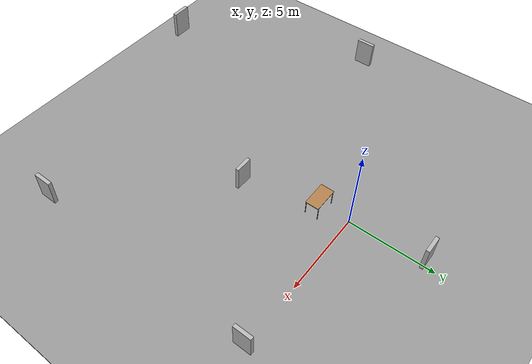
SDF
<sdf version="1.6">
 <world name="default">
  <light name="sun" type="directional">
   <pose>0 0 10 -0.1 -0.5 0</pose>
   <diffuse>0.8 0.8 0.8 1</diffuse>
   <specular>0.2 0.2 0.2 1</specular>
   <attenuation>
    <range>1000</range>
    <constant>0.9</constant>
    <linear>0.01</linear>
    <quadratic>0.001</quadratic>
   </attenuation>
   <direction>-0.5 0.1 -0.9</direction>
  </light>
  <plugin name="ros_interface_plugin" filename="librotors_gazebo_ros_interface_plugin.so"/>
  <spherical_coordinates>
   <surface_model>EARTH_WGS84</surface_model>
   <latitude_deg>47.3667</latitude_deg>
   <longitude_deg>8.55</longitude_deg>
   <elevation>500</elevation>
   <heading_deg>0</heading_deg>
  </spherical_coordinates>
  <physics name="default_physics" default="0" type="ode">
   <ode>
    <solver>
     <type>quick</type>
     <iters>1000</iters>
     <sor>1.3</sor>
     <use_dynamic_moi_rescaling>0</use_dynamic_moi_rescaling>
    </solver>
    <constraints>
     <cfm>0</cfm>
     <erp>0.2</erp>
     <contact_max_correcting_vel>100</contact_max_correcting_vel>
     <contact_surface_layer>0.001</contact_surface_layer>
    </constraints>
   </ode>
   <max_step_size>0.005</max_step_size>
   <real_time_factor>1</real_time_factor>
   <real_time_update_rate>200</real_time_update_rate>
  </physics>
  <scene><ambient>0.4 0.4 0.4 1</ambient><background>0.7 0.7 0.7 1</background><shadows>1</shadows></scene>
  <model name="gallery_plane_0">
   <static>1</static>
   <link name="link">
    <collision name="collision"><geometry><box><size>100 100 0.1</size></box></geometry></collision>
    <visual name="visual">
     <cast_shadows>0</cast_shadows>
     <geometry><box><size>100 100 0.1</size></box></geometry>
     <material>
      <script><uri>file://media/materials/scripts/gazebo.material</uri><name>Gazebo/Grey</name></script>
     </material>
    </visual>
   </link>
  </model>
  <model name="painting_wall_6">
   <static>1</static>
   <link name="link">
    <pose>0 0 1.4 0 -0 0</pose>
    <collision name="collision"><geometry><box><size>1 0.2 1.5</size></box></geometry></collision>
    <visual name="visual">
     <cast_shadows>0</cast_shadows>
     <geometry><box><size>1 0.2 1.5</size></box></geometry>
     <material>
      <script>
       <uri>model://painting_wall/materials/scripts</uri>
       <uri>model://painting_wall/materials/textures</uri>
       <name>vrc/painting_wall8</name>
      </script>
     </material>
    </visual>
   </link>
   <pose>1.81259 -5.68511 0.044938 0 -0 0</pose>
  </model>
  <model name="painting_wall_7">
   <static>1</static>
   <link name="link">
    <pose>0 0 1.4 0 -0 0</pose>
    <collision name="collision"><geometry><box><size>1 0.2 1.5</size></box></geometry></collision>
    <visual name="visual">
     <cast_shadows>0</cast_shadows>
     <geometry><box><size>1 0.2 1.5</size></box></geometry>
     <material>
      <script>
       <uri>model://painting_wall/materials/scripts</uri>
       <uri>model://painting_wall/materials/textures</uri>
       <name>vrc/painting_wall10</name>
      </script>
     </material>
    </visual>
   </link>
   <pose>-2.99853 -14.156 3.2277 0 -0 0</pose>
  </model>
  <model name="painting_wall_8">
   <static>1</static>
   <link name="link">
    <pose>0 0 1.4 0 -0 0</pose>
    <collision name="collision"><geometry><box><size>1 0.2 1.5</size></box></geometry></collision>
    <visual name="visual">
     <cast_shadows>0</cast_shadows>
     <geometry><box><size>1 0.2 1.5</size></box></geometry>
     <material>
      <script>
       <uri>model://painting_wall/materials/scripts</uri>
       <uri>model://painting_wall/materials/textures</uri>
       <name>vrc/painting_wall1</name>
      </script>
     </material>
    </visual>
   </link>
   <pose>-9.29303 -5.09864 1.45276 0 -0 1.57</pose>
  </model>
  <model name="painting_wall_8_clone_0">
   <static>1</static>
   <link name="link">
    <pose>0 0 1.4 0 -0 0</pose>
    <collision name="collision"><geometry><box><size>1 0.2 1.5</size></box></geometry></collision>
    <visual name="visual">
     <cast_shadows>0</cast_shadows>
     <geometry><box><size>1 0.2 1.5</size></box></geometry>
     <material>
      <script>
       <uri>model://painting_wall/materials/scripts</uri>
       <uri>model://painting_wall/materials/textures</uri>
       <name>vrc/painting_wall3</name>
      </script>
     </material>
    </visual>
   </link>
   <pose>9.09036 0.112006 0.128976 0 -0 1.57</pose>
  </model>
  <model name="painting_wall_8_clone_1">
   <static>1</static>
   <link name="link">
    <pose>0 0 1.4 0 -0 0</pose>
    <collision name="collision"><geometry><box><size>1 0.2 1.5</size></box></geometry></collision>
    <visual name="visual">
     <cast_shadows>0</cast_shadows>
     <geometry><box><size>1 0.2 1.5</size></box></geometry>
     <material>
      <script>
       <uri>model://painting_wall/materials/scripts</uri>
       <uri>model://painting_wall/materials/textures</uri>
       <name>vrc/painting_wall5</name>
      </script>
     </material>
    </visual>
   </link>
   <pose>9.35135 -12.1695 1.1297 0 -0 1.57</pose>
  </model>
  <model name="table">
   <static>1</static>
   <link name="link">
    <collision name="surface">
     <pose>0 0 1 0 -0 0</pose>
     <geometry><box><size>1.5 0.8 0.03</size></box></geometry>
     <surface><friction><ode><mu>0.6</mu><mu2>0.6</mu2></ode></friction></surface>
    </collision>
    <visual name="visual1">
     <pose>0 0 1 0 -0 0</pose>
     <geometry><box><size>1.5 0.8 0.03</size></box></geometry>
     <material>
      <script><uri>file://media/materials/scripts/gazebo.material</uri><name>Gazebo/Wood</name></script>
     </material>
    </visual>
    <collision name="front_left_leg">
     <pose>0.68 0.38 0.5 0 -0 0</pose>
     <geometry><cylinder><radius>0.02</radius><length>1</length></cylinder></geometry>
    </collision>
    <visual name="front_left_leg">
     <pose>0.68 0.38 0.5 0 -0 0</pose>
     <geometry><cylinder><radius>0.02</radius><length>1</length></cylinder></geometry>
     <material>
      <script><uri>file://media/materials/scripts/gazebo.material</uri><name>Gazebo/Grey</name></script>
     </material>
    </visual>
    <collision name="front_right_leg">
     <pose>0.68 -0.38 0.5 0 -0 0</pose>
     <geometry><cylinder><radius>0.02</radius><length>1</length></cylinder></geometry>
    </collision>
    <visual name="front_right_leg">
     <pose>0.68 -0.38 0.5 0 -0 0</pose>
     <geometry><cylinder><radius>0.02</radius><length>1</length></cylinder></geometry>
     <material>
      <script><uri>file://media/materials/scripts/gazebo.material</uri><name>Gazebo/Grey</name></script>
     </material>
    </visual>
    <collision name="back_right_leg">
     <pose>-0.68 -0.38 0.5 0 -0 0</pose>
     <geometry><cylinder><radius>0.02</radius><length>1</length></cylinder></geometry>
    </collision>
    <visual name="back_right_leg">
     <pose>-0.68 -0.38 0.5 0 -0 0</pose>
     <geometry><cylinder><radius>0.02</radius><length>1</length></cylinder></geometry>
     <material>
      <script><uri>file://media/materials/scripts/gazebo.material</uri><name>Gazebo/Grey</name></script>
     </material>
    </visual>
    <collision name="back_left_leg">
     <pose>-0.68 0.38 0.5 0 -0 0</pose>
     <geometry><cylinder><radius>0.02</radius><length>1</length></cylinder></geometry>
    </collision>
    <visual name="back_left_leg">
     <pose>-0.68 0.38 0.5 0 -0 0</pose>
     <geometry><cylinder><radius>0.02</radius><length>1</length></cylinder></geometry>
     <material>
      <script><uri>file://media/materials/scripts/gazebo.material</uri><name>Gazebo/Grey</name></script>
     </material>
    </visual>
   </link>
   <pose>0.271496 -1.75917 0 0 -0 0</pose>
  </model>
  <model name="painting_wall_4_clone">
   <static>1</static>
   <link name="link">
    <pose>0 0 1.4 0 -0 0</pose>
    <collision name="collision"><geometry><box><size>1 0.2 1.5</size></box></geometry></collision>
    <visual name="visual">
     <cast_shadows>0</cast_shadows>
     <geometry><box><size>1 0.2 1.5</size></box></geometry>
     <material>
      <script>
       <uri>model://painting_wall/materials/scripts</uri>
       <uri>model://painting_wall/materials/textures</uri>
       <name>vrc/painting_wall7</name>
      </script>
     </material>
    </visual>
   </link>
   <pose>0.325366 4.38478 0.30286 0 -0 0</pose>
  </model>
  <gravity>0 0 -9.8</gravity>
  <magnetic_field>6e-06 2.3e-05 -4.2e-05</magnetic_field>
  <atmosphere type="adiabatic"/>
  <audio><device>default</device></audio>
 </world>
</sdf>
